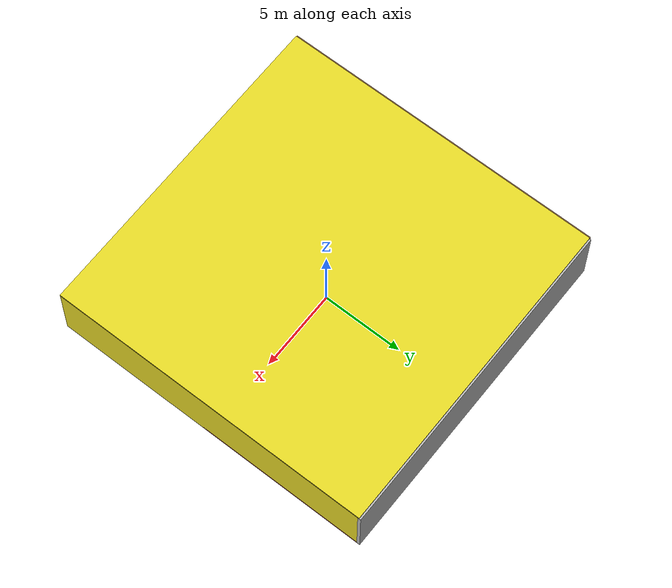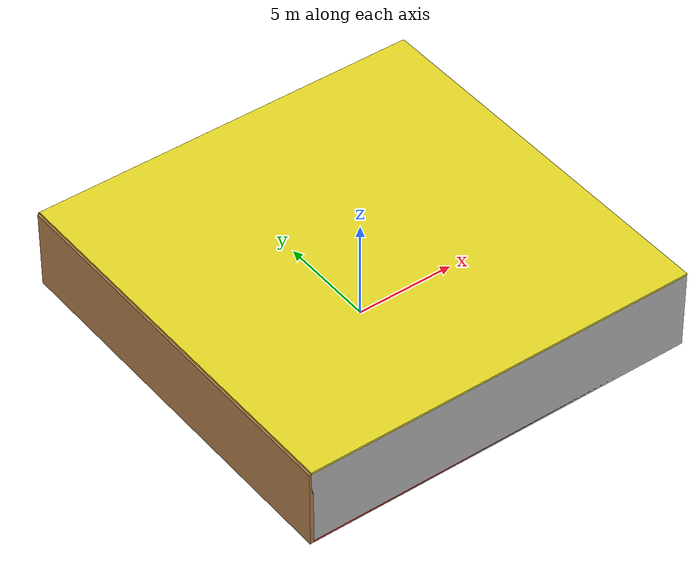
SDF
<sdf version="1.4">
 <world name="default">
  <physics type="ode">
   <max_step_size>0.001</max_step_size>
   <real_time_factor>1</real_time_factor>
   <real_time_update_rate>1000</real_time_update_rate>
   <gravity>0 0 -9.8</gravity>
  </physics>
  <scene><ambient>0.4 0.4 0.4 1</ambient><background>0.7 0.7 0.7 1</background><shadows>1</shadows></scene>
  <model name="Surrounding">
   <static>1</static>
   <link name="Ceiling">
    <collision name="Ceiling_Collision"><geometry><box><size>20 20 0.1</size></box></geometry></collision>
    <visual name="Ceiling_Visual">
     <geometry><box><size>20 20 0.1</size></box></geometry>
     <material>
      <script><uri>file://media/materials/scripts/gazebo.material</uri><name>Gazebo/YellowGlow</name></script>
     </material>
    </visual>
    <pose>0 0 4.05 0 0 0</pose>
   </link>
   <link name="Wall_South">
    <collision name="Wall_South_Collision">
     <geometry><box><size>20 0 4</size></box></geometry>
     <pose>0 0 2 0 -0 0</pose>
    </collision>
    <visual name="Wall_South_Visual">
     <pose>0 0 2 0 -0 0</pose>
     <geometry><box><size>20 0 4</size></box></geometry>
     <material>
      <script><uri>file://media/materials/scripts/gazebo.material</uri><name>Gazebo/LightOn</name></script>
     </material>
    </visual>
    <velocity_decay><linear>0</linear><angular>0</angular></velocity_decay>
    <pose>0 -10 0 0 -0 0</pose>
   </link>
   <link name="Wall_East">
    <collision name="Wall_21_Collision">
     <geometry><box><size>20 0 4</size></box></geometry>
     <pose>0 0 2 0 -0 0</pose>
    </collision>
    <visual name="Wall_21_Visual">
     <pose>0 0 2 0 -0 0</pose>
     <geometry><box><size>20 0 4</size></box></geometry>
     <material>
      <script><uri>file://media/materials/scripts/gazebo.material</uri><name>Gazebo/YellowGlow</name></script>
     </material>
    </visual>
    <velocity_decay><linear>0</linear><angular>0</angular></velocity_decay>
    <pose>10 0 0 0 -0 1.5708</pose>
   </link>
   <link name="Wall_North">
    <collision name="Wall_22_Collision">
     <geometry><box><size>20 0.2 4</size></box></geometry>
     <pose>0 0 2 0 -0 0</pose>
    </collision>
    <visual name="Wall_22_Visual">
     <pose>0 0 2 0 -0 0</pose>
     <geometry><box><size>20 0.2 4</size></box></geometry>
     <material>
      <script><uri>file://media/materials/scripts/gazebo.material</uri><name>Gazebo/JointAnchor</name></script>
     </material>
    </visual>
    <velocity_decay><linear>0</linear><angular>0</angular></velocity_decay>
    <pose>0 10 0 0 -0 0</pose>
   </link>
   <link name="Wall_West">
    <collision name="Wall_23_Collision">
     <geometry><box><size>20 0.2 4</size></box></geometry>
     <pose>0 0 2 0 -0 0</pose>
    </collision>
    <visual name="Wall_23_Visual">
     <pose>0 0 2 0 -0 0</pose>
     <geometry><box><size>20 0.2 4</size></box></geometry>
     <material>
      <script><uri>file://media/materials/scripts/gazebo.material</uri><name>Gazebo/Wood</name></script>
     </material>
    </visual>
    <velocity_decay><linear>0</linear><angular>0</angular></velocity_decay>
    <pose>-10 0 0 0 0 -1.5708</pose>
   </link>
   <link name="Ground_link">
    <collision name="collision">
     <pose>0 0 .05 0 -0 0</pose>
     <geometry><box><size>20 20 0.1</size></box></geometry>
    </collision>
    <visual name="visual">
     <pose>0 0 .05 0 -0 0</pose>
     <geometry><box><size>20 20 0.1</size></box></geometry>
     <material>
      <script><uri>file://media/materials/scripts/gazebo.material</uri><name>Gazebo/Red</name></script>
     </material>
    </visual>
   </link>
   <static>1</static>
  </model>
  <spherical_coordinates>
   <surface_model>EARTH_WGS84</surface_model>
   <latitude_deg>0</latitude_deg>
   <longitude_deg>0</longitude_deg>
   <elevation>0</elevation>
   <heading_deg>0</heading_deg>
  </spherical_coordinates>
  <light name="lightball_0" type="diffuse">
   <diffuse>0.8 0.8 0.8 1</diffuse>
   <specular>0.2 0.2 0.2 1</specular>
   <attenuation>
    <range>100</range>
    <constant>0.7</constant>
    <linear>0.01</linear>
    <quadratic>0.001</quadratic>
   </attenuation>
   <direction>-0.5 0.1 -0.9</direction>
   <pose>2.84886265315 9.21334599314 2.91091888894 0 0 0</pose>
  </light>
  <light name="lightball_1" type="diffuse">
   <diffuse>0.8 0.8 0.8 1</diffuse>
   <specular>0.2 0.2 0.2 1</specular>
   <attenuation>
    <range>100</range>
    <constant>0.7</constant>
    <linear>0.01</linear>
    <quadratic>0.001</quadratic>
   </attenuation>
   <direction>-0.5 0.1 -0.9</direction>
   <pose>-9.1143241482 6.68898719016 3.36482731967 0 0 0</pose>
  </light>
  <include>
   <uri>model://construction_cone</uri>
   <pose>-6.76762225306 -6.91528821006 0 0 0 0.275824675482</pose>
  </include>
  <include><uri>model://cabinet</uri><pose>-6.86590276349 -4.53283480117 0 0 0 1.94184808604</pose></include>
  <include>
   <uri>model://construction_cone</uri>
   <pose>-4.16831252268 -6.84189550706 0 0 0 0.0838649172307</pose>
  </include>
  <include>
   <uri>model://textured_shapes</uri>
   <pose>-4.55037912087 -1.62073796459 0 0 0 0.0881246506689</pose>
  </include>
  <include><uri>model://cabinet</uri><pose>-4.91575609176 1.8394287407 0 0 0 1.71793692558</pose></include>
  <include><uri>model://cabinet</uri><pose>-0.870829976263 -7.34045581604 0 0 0 3.10240889708</pose></include>
  <include><uri>model://cabinet</uri><pose>-1.59189775261 -4.69201983397 0 0 0 0.788850388738</pose></include>
  <include><uri>model://table</uri><pose>0.890673811451 -1.39409161715 0 0 0 2.82688732478</pose></include>
  <include>
   <uri>model://robocup_3Dsim_goal</uri>
   <pose>1.23410534 1.09830172589 0 0 0 0.129219129872</pose>
  </include>
  <include><uri>model://table</uri><pose>5.18703145296 -4.43492138269 0 0 0 2.47844739709</pose></include>
  <include><uri>model://cabinet</uri><pose>4.59029924821 1.8659606245 0 0 0 1.57669846573</pose></include>
  <include><uri>model://cabinet</uri><pose>3.71208206744 4.05807194341 0 0 0 0.0747199803225</pose></include>
  <include>
   <uri>model://construction_cone</uri>
   <pose>6.94233517563 -3.85785155175 0 0 0 1.38183683816</pose>
  </include>
  <include>
   <uri>model://construction_cone</uri>
   <pose>7.52303140831 -1.28937280559 0 0 0 1.91807849327</pose>
  </include>
 </world>
</sdf>

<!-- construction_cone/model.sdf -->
<sdf version="1.5">
  <model name="Construction Cone">
    <link name="link">
      <collision name="collision">
        <geometry>
          <mesh>
            <scale>10 10 10</scale>
            <uri>file://isr-testbed/construction_cone/meshes/construction_cone.dae</uri>
          </mesh>
        </geometry>
      </collision>
      <visual name="visual">
        <geometry>
          <mesh>
            <scale>10 10 10</scale>
            <uri>file://isr-testbed/construction_cone/meshes/construction_cone.dae</uri>
          </mesh>
        </geometry>
      </visual>
    </link>
  </model>
</sdf>

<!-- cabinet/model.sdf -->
<sdf version="1.5">
  <model name="cabinet">
    <static>true</static>
    <link name="cabinet_bottom_plate">
      <inertial>
        <pose>0 0 -1 0 0 0</pose>
        <inertia>
          <ixx>2.050000</ixx>
          <ixy>0</ixy>
          <ixz>0</ixz>
          <iyy>2.050000</iyy>
          <iyz>0</iyz>
          <izz>2.050000</izz>
        </inertia>
        <mass>25.000000</mass>
      </inertial>
      <collision name="cabinet_bottom_plate_geom">
        <pose>0 0 0.010000 0 0 0</pose>
        <geometry>
          <box>
            <size>0.450000 0.450000 0.020000</size>
          </box>
        </geometry>
      </collision>
      <visual name="cabinet_bottom_plate_geom_visual">
        <pose>0 0 0.010000 0 0 0</pose>
        <geometry>
          <box>
            <size>0.450000 0.450000 0.020000</size>
          </box>
        </geometry>
        <material>
          <script>
            <uri>model://media/materials/scripts/gazebo.material</uri>
            <name>Gazebo/Wood</name>
          </script>
        </material>
      </visual>
      <collision name="cabinet_bottom_plate_geom_cabinet_back_plate">
        <pose>0.235000 0 0.510000 0 0 0</pose>
        <geometry>
          <box>
            <size>0.020000 0.450000 1.020000</size>
          </box>
        </geometry>
      </collision>
      <visual name="cabinet_bottom_plate_geom_cabinet_back_plate_visual">
        <pose>0.235000 0 0.510000 0 0 0</pose>
        <geometry>
          <box>
            <size>0.020000 0.450000 1.020000</size>
          </box>
        </geometry>
        <material>
          <script>
            <uri>model://media/materials/scripts/gazebo.material</uri>
            <name>Gazebo/Wood</name>
          </script>
        </material>
      </visual>
      <collision name="cabinet_bottom_plate_geom_cabinet_left_plate">
        <pose>0 0.235000 0.510000 0 0 0</pose>
        <geometry>
          <box>
            <size>0.450000 0.020000 1.020000</size>
          </box>
        </geometry>
      </collision>
      <visual name="cabinet_bottom_plate_geom_cabinet_left_plate_visual">
        <pose>0 0.235000 0.510000 0 0 0</pose>
        <geometry>
          <box>
            <size>0.450000 0.020000 1.020000</size>
          </box>
        </geometry>
        <material>
          <script>
            <uri>model://media/materials/scripts/gazebo.material</uri>
            <name>Gazebo/Wood</name>
          </script>
        </material>
      </visual>
      <collision name="cabinet_bottom_plate_geom_cabinet_middle_plate">
        <pose>0 0 0.510000 0 0 0</pose>
        <geometry>
          <box>
            <size>0.450000 0.450000 0.020000</size>
          </box>
        </geometry>
      </collision>
      <visual name="cabinet_bottom_plate_geom_cabinet_middle_plate_visual">
        <pose>0 0 0.510000 0 0 0</pose>
        <geometry>
          <box>
            <size>0.450000 0.450000 0.020000</size>
          </box>
        </geometry>
        <material>
          <script>
            <uri>model://media/materials/scripts/gazebo.material</uri>
            <name>Gazebo/Wood</name>
          </script>
        </material>
      </visual>
      <collision name="cabinet_bottom_plate_geom_cabinet_right_plate">
        <pose>0 -0.235000 0.510000 0 0 0</pose>
        <geometry>
          <box>
            <size>0.450000 0.020000 1.020000</size>
          </box>
        </geometry>
      </collision>
      <visual name="cabinet_bottom_plate_geom_cabinet_right_plate_visual">
        <pose>0 -0.235000 0.510000 0 0 0</pose>
        <geometry>
          <box>
            <size>0.450000 0.020000 1.020000</size>
          </box>
        </geometry>
        <material>
          <script>
            <uri>model://media/materials/scripts/gazebo.material</uri>
            <name>Gazebo/Wood</name>
          </script>
        </material>
      </visual>
      <collision name="cabinet_bottom_plate_geom_cabinet_top_plate">
        <pose>0 0 1.010000 0 0 0</pose>
        <geometry>
          <box>
            <size>0.450000 0.450000 0.020000</size>
          </box>
        </geometry>
      </collision>
      <visual name="cabinet_bottom_plate_geom_cabinet_top_plate_visual">
        <pose>0 0 1.010000 0 0 0</pose>
        <geometry>
          <box>
            <size>0.450000 0.450000 0.020000</size>
          </box>
        </geometry>
        <material>
          <script>
            <uri>model://media/materials/scripts/gazebo.material</uri>
            <name>Gazebo/Wood</name>
          </script>
        </material>
      </visual>
    </link>
  </model>
</sdf>

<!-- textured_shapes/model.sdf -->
<sdf version="1.6">
  <model name="textured_shapes">
    <pose>0 0 0.5 0 0 0</pose>
    <link name="box">
      <pose>0 -1.5 0 0 0 0</pose>
      <collision name="collision">
        <geometry>
          <box>
            <size>1 1 1</size>
          </box>
        </geometry>
      </collision>
      <visual name="visual">
        <geometry>
          <box>
            <size>1 1 1</size>
          </box>
        </geometry>
        <material>
          <script>
            <uri>model://../model_source/models/textured_shapes/materials/scripts</uri>
            <uri>model://../model_source/models/textured_shapes/materials/textures</uri>
            <name>TexturedShape/Squares</name>
          </script>
        </material>
      </visual>
    </link>
    <link name="sphere">
      <collision name="collision">
        <geometry>
          <sphere>
            <radius>0.5</radius>
          </sphere>
        </geometry>
      </collision>
      <visual name="visual">
        <geometry>
          <sphere>
            <radius>0.5</radius>
          </sphere>
        </geometry>
        <material>
          <script>
            <uri>model://../model_source/models/textured_shapes/materials/scripts</uri>
            <uri>model://../model_source/models/textured_shapes/materials/textures</uri>
            <name>TexturedShape/Squares</name>
          </script>
        </material>
      </visual>
    </link>
    <link name="cylinder">
      <pose>0 1.5 0 0 0 0</pose>
      <collision name="collision">
        <geometry>
          <cylinder>
            <radius>0.5</radius>
            <length>1</length>
          </cylinder>
        </geometry>
      </collision>
      <visual name="visual">
        <geometry>
          <cylinder>
            <radius>0.5</radius>
            <length>1</length>
          </cylinder>
        </geometry>
        <material>
          <script>
            <uri>model://../model_source/models/textured_shapes/materials/scripts</uri>
            <uri>model://../model_source/models/textured_shapes/materials/textures</uri>
            <name>TexturedShape/Squares</name>
          </script>
        </material>
      </visual>
    </link>
  </model>
</sdf>

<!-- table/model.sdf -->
<sdf version="1.5">
  <model name="table">
    <static>true</static>
    <link name="link">
      <collision name="surface">
        <pose>0 0 1.0 0 0 0</pose>
        <geometry>
          <box>
            <size>1.5 0.8 0.03</size>
          </box>
        </geometry>
        <surface>
          <friction>
            <ode>
              <mu>0.6</mu>
              <mu2>0.6</mu2>
            </ode>
          </friction>
        </surface>
      </collision>
      <visual name="visual1">
        <pose>0 0 1.0 0 0 0</pose>
        <geometry>
          <box>
            <size>1.5 0.8 0.03</size>
          </box>
        </geometry>
        <material>
          <script>
            <uri>model://media/materials/scripts/gazebo.material</uri>
            <name>Gazebo/Wood</name>
          </script>
        </material>
      </visual>
      <collision name="front_left_leg">
        <pose>0.68 0.38 0.5 0 0 0</pose>
        <geometry>
          <cylinder>
            <radius>0.02</radius>
            <length>1.0</length>
          </cylinder>
        </geometry>
      </collision>
      <visual name="front_left_leg">
        <pose>0.68 0.38 0.5 0 0 0</pose>
        <geometry>
          <cylinder>
            <radius>0.02</radius>
            <length>1.0</length>
          </cylinder>
        </geometry>
        <material>
          <script>
            <uri>model://media/materials/scripts/gazebo.material</uri>
            <name>Gazebo/Grey</name>
          </script>
        </material>
      </visual>
      <collision name="front_right_leg">
        <pose>0.68 -0.38 0.5 0 0 0</pose>
        <geometry>
          <cylinder>
            <radius>0.02</radius>
            <length>1.0</length>
          </cylinder>
        </geometry>
      </collision>
      <visual name="front_right_leg">
        <pose>0.68 -0.38 0.5 0 0 0</pose>
        <geometry>
          <cylinder>
            <radius>0.02</radius>
            <length>1.0</length>
          </cylinder>
        </geometry>
        <material>
          <script>
            <uri>model://media/materials/scripts/gazebo.material</uri>
            <name>Gazebo/Grey</name>
          </script>
        </material>
      </visual>
      <collision name="back_right_leg">
        <pose>-0.68 -0.38 0.5 0 0 0</pose>
        <geometry>
          <cylinder>
            <radius>0.02</radius>
            <length>1.0</length>
          </cylinder>
        </geometry>
      </collision>
      <visual name="back_right_leg">
        <pose>-0.68 -0.38 0.5 0 0 0</pose>
        <geometry>
          <cylinder>
            <radius>0.02</radius>
            <length>1.0</length>
          </cylinder>
        </geometry>
        <material>
          <script>
            <uri>model://media/materials/scripts/gazebo.material</uri>
            <name>Gazebo/Grey</name>
          </script>
        </material>
      </visual>
      <collision name="back_left_leg">
        <pose>-0.68 0.38 0.5 0 0 0</pose>
        <geometry>
          <cylinder>
            <radius>0.02</radius>
            <length>1.0</length>
          </cylinder>
        </geometry>
      </collision>
      <visual name="back_left_leg">
        <pose>-0.68 0.38 0.5 0 0 0</pose>
        <geometry>
          <cylinder>
            <radius>0.02</radius>
            <length>1.0</length>
          </cylinder>
        </geometry>
        <material>
          <script>
            <uri>model://media/materials/scripts/gazebo.material</uri>
            <name>Gazebo/Grey</name>
          </script>
        </material>
      </visual>
    </link>
  </model>
</sdf>

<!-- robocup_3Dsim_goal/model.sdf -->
<sdf version="1.5">
  <model name="robocup_3d_goal">
    <static>true</static>
    <link name="left_post">
      <pose>0 1.05 0.45 0 0 0</pose>
      <collision name="collision">
        <geometry>
          <cylinder>
            <radius>0.05</radius>
            <length>0.9</length>
          </cylinder>
        </geometry>
      </collision>
      <visual name="visual">
        <geometry>
          <cylinder>
            <radius>0.05</radius>
            <length>0.9</length>
          </cylinder>
        </geometry>
        <material>
          <script>
            <uri>file://media/materials/scripts/gazebo.material</uri>
            <name>Gazebo/ZincYellow</name>
          </script>
        </material>
      </visual>
    </link>
    <link name="left_support_horiz_lower">
      <pose>0.30 1.05 0.01 0 0 0</pose>
      <collision name="collision">
        <geometry>
          <box>
            <size>0.50 0.02 0.02</size>
          </box>
        </geometry>
      </collision>
      <visual name="visual">
        <geometry>
          <box>
            <size>0.50 0.02 0.02</size>
          </box>
        </geometry>
        <material>
          <script>
            <uri>file://media/materials/scripts/gazebo.material</uri>
            <name>Gazebo/White</name>
          </script>
        </material>
      </visual>
    </link>
    <link name="left_support_horiz_upper">
      <pose>0.30 1.05 0.79 0 0 0</pose>
      <collision name="collision">
        <geometry>
          <box>
            <size>0.50 0.02 0.02</size>
          </box>
        </geometry>
      </collision>
      <visual name="visual">
        <geometry>
          <box>
            <size>0.50 0.02 0.02</size>
          </box>
        </geometry>
        <material>
          <script>
            <uri>file://media/materials/scripts/gazebo.material</uri>
            <name>Gazebo/White</name>
          </script>
        </material>
      </visual>
    </link>
    <link name="left_support_vertical">
      <pose>0.56 1.05 0.4 0 1.5708 0</pose>
      <collision name="collision">
        <geometry>
          <box>
            <size>0.80 0.02 0.02</size>
          </box>
        </geometry>
      </collision>
      <visual name="visual">
        <geometry>
          <box>
            <size>0.80 0.02 0.02</size>
          </box>
        </geometry>
        <material>
          <script>
            <uri>file://media/materials/scripts/gazebo.material</uri>
            <name>Gazebo/White</name>
          </script>
        </material>
      </visual>
    </link>
    <link name="right_support_horiz_lower">
      <pose>0.30 -1.05 0.01 0 0 0</pose>
      <collision name="collision">
        <geometry>
          <box>
            <size>0.50 0.02 0.02</size>
          </box>
        </geometry>
      </collision>
      <visual name="visual">
        <geometry>
          <box>
            <size>0.50 0.02 0.02</size>
          </box>
        </geometry>
        <material>
          <script>
            <uri>file://media/materials/scripts/gazebo.material</uri>
            <name>Gazebo/White</name>
          </script>
        </material>
      </visual>
    </link>
    <link name="right_support_horiz_upper">
      <pose>0.30 -1.05 0.79 0 0 0</pose>
      <collision name="collision">
        <geometry>
          <box>
            <size>0.50 0.02 0.02</size>
          </box>
        </geometry>
      </collision>
      <visual name="visual">
        <geometry>
          <box>
            <size>0.50 0.02 0.02</size>
          </box>
        </geometry>
        <material>
          <script>
            <uri>file://media/materials/scripts/gazebo.material</uri>
            <name>Gazebo/White</name>
          </script>
        </material>
      </visual>
    </link>
    <link name="right_support_vertical">
      <pose>0.56 -1.05 0.4 0 1.5708 0</pose>
      <collision name="collision">
        <geometry>
          <box>
            <size>0.80 0.02 0.02</size>
          </box>
        </geometry>
      </collision>
      <visual name="visual">
        <geometry>
          <box>
            <size>0.80 0.02 0.02</size>
          </box>
        </geometry>
        <material>
          <script>
            <uri>file://media/materials/scripts/gazebo.material</uri>
            <name>Gazebo/White</name>
          </script>
        </material>
      </visual>
    </link>
    <link name="center_support_horiz_lower">
      <pose>0.56 0 0.01 0 1.5708 0</pose>
      <collision name="collision">
        <geometry>
          <box>
            <size>0.02 2.08 0.02</size>
          </box>
        </geometry>
      </collision>
      <visual name="visual">
        <geometry>
          <box>
            <size>0.02 2.08 0.02</size>
          </box>
        </geometry>
        <material>
          <script>
            <uri>file://media/materials/scripts/gazebo.material</uri>
            <name>Gazebo/White</name>
          </script>
        </material>
      </visual>
    </link>
    <link name="center_support_horiz_upper">
      <pose>0.56 0 0.79 0 1.5708 0</pose>
      <collision name="collision">
        <geometry>
          <box>
            <size>0.02 2.08 0.02</size>
          </box>
        </geometry>
      </collision>
      <visual name="visual">
        <geometry>
          <box>
            <size>0.02 2.08 0.02</size>
          </box>
        </geometry>
        <material>
          <script>
            <uri>file://media/materials/scripts/gazebo.material</uri>
            <name>Gazebo/White</name>
          </script>
        </material>
      </visual>
    </link>
    <link name="right_post">
      <pose>0 -1.05 0.45 0 0 0</pose>
      <collision name="collision">
        <geometry>
          <cylinder>
            <radius>0.05</radius>
            <length>0.9</length>
          </cylinder>
        </geometry>
      </collision>
      <visual name="visual">
        <geometry>
          <cylinder>
            <radius>0.05</radius>
            <length>0.9</length>
          </cylinder>
        </geometry>
        <material>
          <script>
            <uri>file://media/materials/scripts/gazebo.material</uri>
            <name>Gazebo/ZincYellow</name>
          </script>
        </material>
      </visual>
    </link>
    <link name="crossbar">
      <pose>0 0 0.85 1.57 1.57 0</pose>
      <collision name="collision">
        <geometry>
          <cylinder>
            <radius>0.05</radius>
            <length>2.0</length>
          </cylinder>
        </geometry>
      </collision>
      <visual name="visual">
        <geometry>
          <cylinder>
            <radius>0.05</radius>
            <length>2.0</length>
          </cylinder>
        </geometry>
        <material>
          <script>
            <uri>file://media/materials/scripts/gazebo.material</uri>
            <name>Gazebo/ZincYellow</name>
          </script>
        </material>
      </visual>
    </link>
    <link name="center_net">
      <pose>0.56 0 0.40 0 0 0</pose>
      <collision name="collision">
        <geometry>
          <box>
            <size>0.01 2.1 0.80</size>
          </box>
        </geometry>
      </collision>
      <visual name="visual">
        <geometry>
          <box>
            <size>0.01 2.1 0.80</size>
          </box>
        </geometry>
        <material>
          <script>
            <uri>model://../model_source/models/robocup09_spl_field/materials/scripts/</uri>
            <uri>model://../model_source/models/robocup09_spl_field/materials/textures/</uri>
            <name>RoboCup/Net</name>
          </script>
        </material>
      </visual>
    </link>
    <link name="left_net">
      <pose>0.30 1.05 0.40 0 0 0</pose>
      <collision name="collision">
        <geometry>
          <box>
            <size>0.50 0.01 0.76</size>
          </box>
        </geometry>
      </collision>
      <visual name="visual">
        <geometry>
          <box>
            <size>0.50 0.01 0.76</size>
          </box>
        </geometry>
        <material>
          <script>
            <uri>model://../model_source/models/robocup09_spl_field/materials/scripts/</uri>
            <uri>model://../model_source/models/robocup09_spl_field/materials/textures/</uri>
            <name>RoboCup/Net</name>
          </script>
        </material>
      </visual>
    </link>
    <link name="right_net">
      <pose>0.30 -1.05 0.40 0 0 0</pose>
      <collision name="collision">
        <geometry>
          <box>
            <size>0.50 0.01 0.76</size>
          </box>
        </geometry>
      </collision>
      <visual name="visual">
        <geometry>
          <box>
            <size>0.50 0.01 0.76</size>
          </box>
        </geometry>
        <material>
          <script>
            <uri>model://../model_source/models/robocup09_spl_field/materials/scripts/</uri>
            <uri>model://../model_source/models/robocup09_spl_field/materials/textures/</uri>
            <name>RoboCup/Net</name>
          </script>
        </material>
      </visual>
    </link>
  </model>
</sdf>
